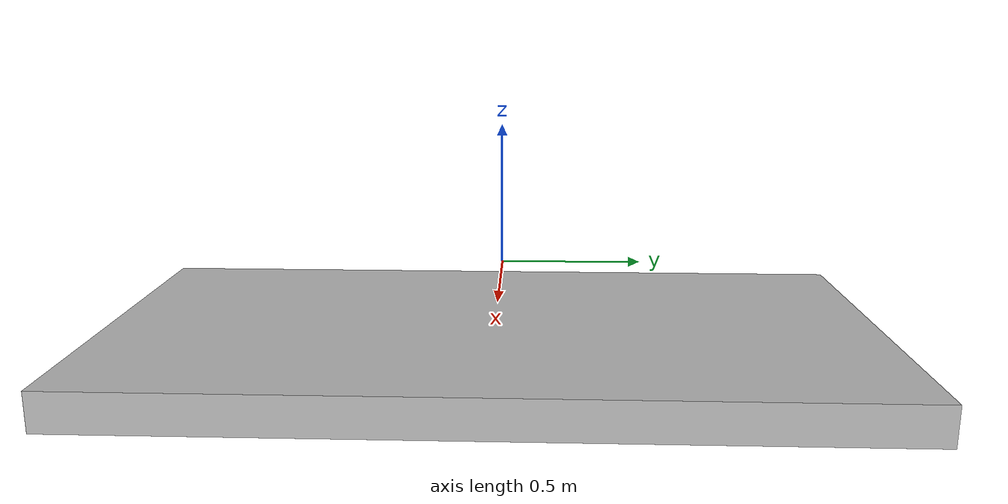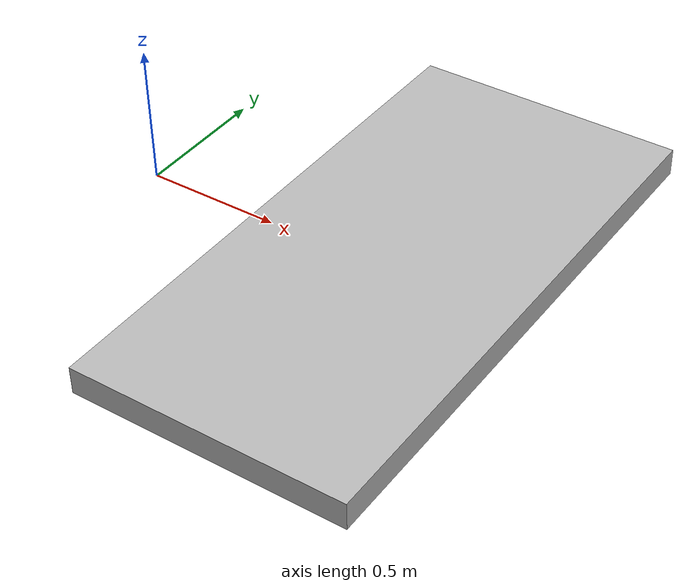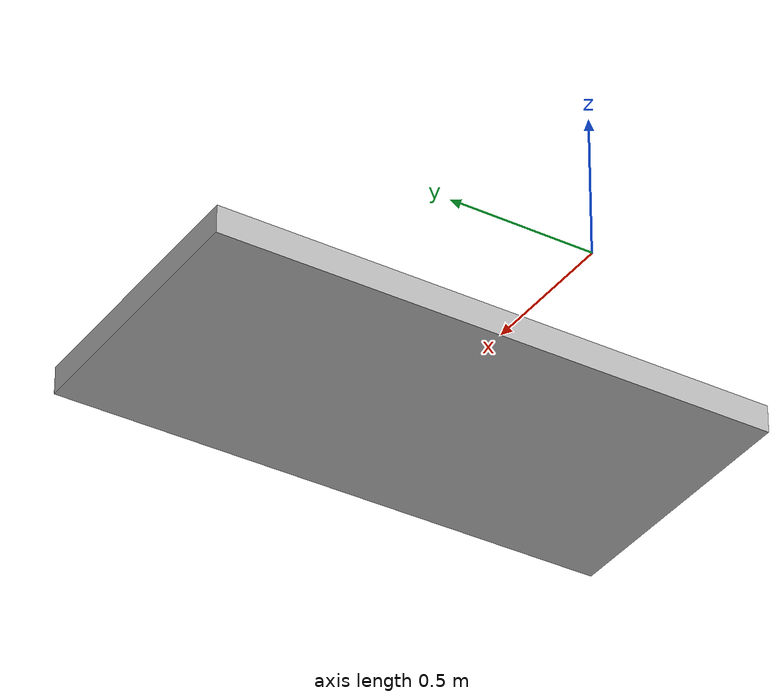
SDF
<?xml version="1.0"?>
<sdf version="1.4">
  <model name="platform_0.1">
    <pose>1.0 0 0.05 0 0 0</pose>
    <static>true</static>

    <link name="platform">
      <visual name="platform_visual">
        <pose>0 0 0 0 0 0</pose>
        <geometry>
          <box>
            <size>1 2 0.1</size>
          </box>
        </geometry>
      </visual>
      <collision name="platform_collision">
        <pose>0 0 0 0 0 0</pose>
        <geometry>
          <box>
            <size>1 2 0.1</size>
          </box>
        </geometry>
      </collision>
    </link>

  </model>
</sdf>
